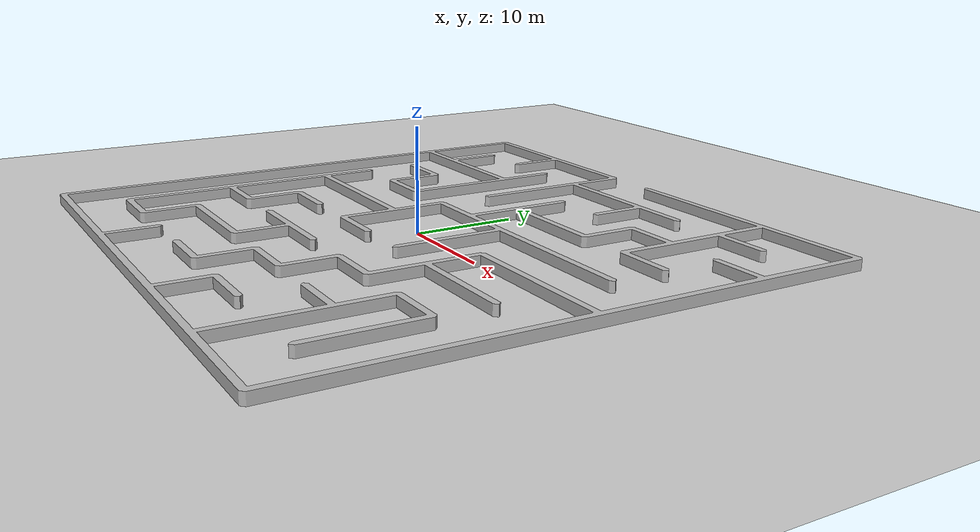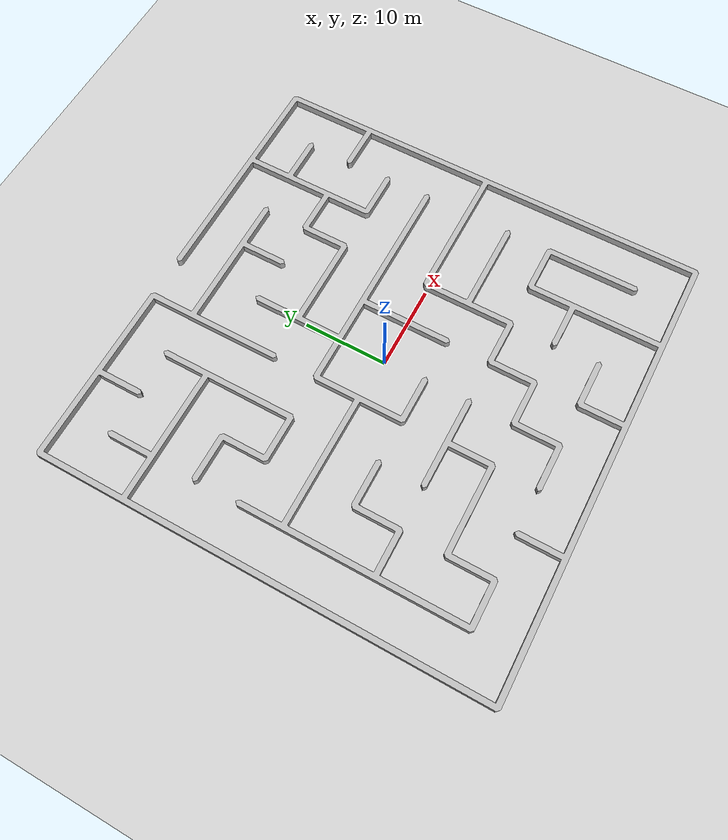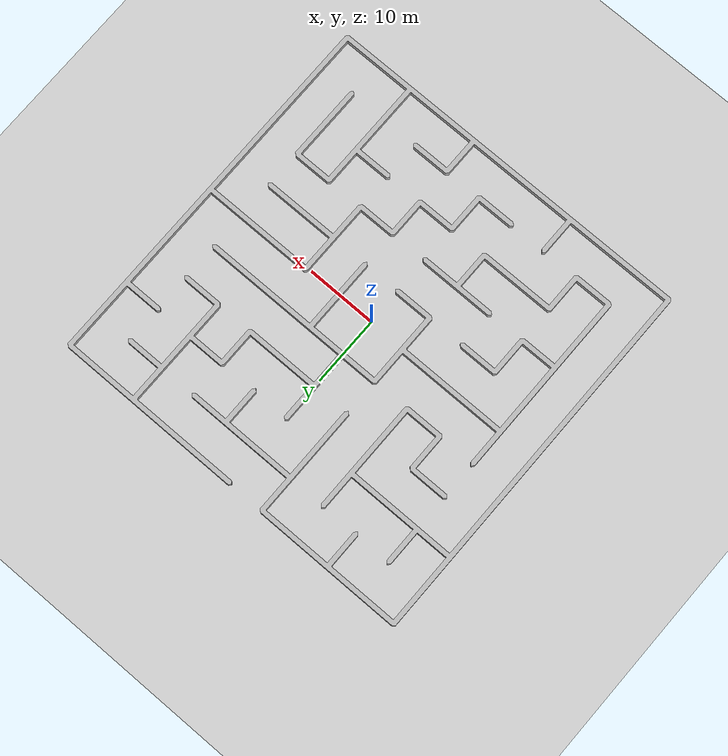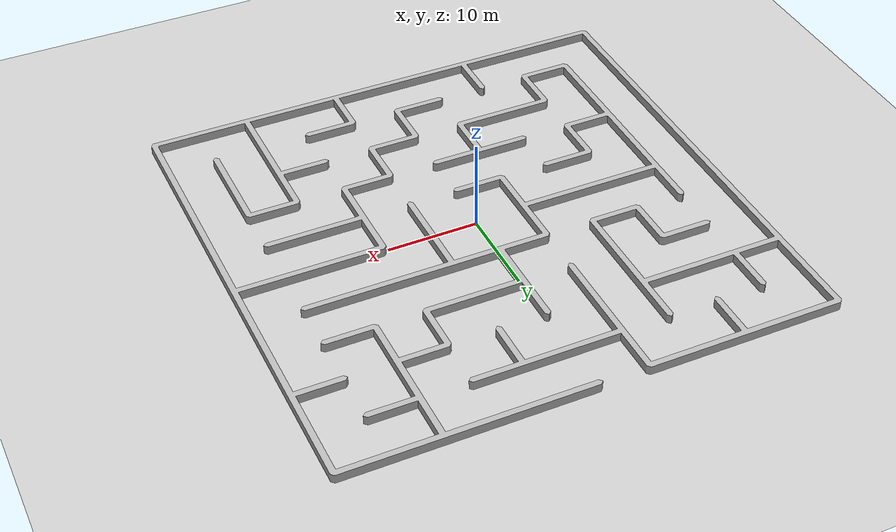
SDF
<?xml version="1.0"?>

<sdf version="1.6">
  <world name="default">
    <plugin name="gazebo_ros_state" filename="libgazebo_ros_state.so">
      <ros>
        <namespace>/demo</namespace>
        <remapping>model_states:=model_states_demo</remapping>
        <remapping>link_states:=link_states_demo</remapping>
      </ros>
      <update_rate>10.0</update_rate>
    </plugin>

    <include>
      <uri>model://ground_plane</uri>
    </include>
    <include>
      <uri>model://sun</uri>
    </include>

​    <include>
​      <uri>model://maze1</uri>
​    </include>

    <gui fullscreen='0'>
      <camera name='user_camera'>
        <pose>-30.7614 1.32089 33.8068 0 0.655644 0.025013</pose>
        <view_controller>orbit</view_controller>
        <projection_type>perspective</projection_type>
      </camera>
    </gui>

  </world>
</sdf>

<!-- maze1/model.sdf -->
<sdf version="1.4">
  <model name="maze1">
    <link name="link">
      <inertial>
        <mass>1</mass>
        <inertia>
          <ixx>0.0</ixx>
          <ixy>0.0</ixy>
          <ixz>0.0</ixz>
          <iyy>0.0</iyy>
          <iyz>0.0</iyz>
          <izz>0.0</izz>
        </inertia>
      </inertial>
      <collision name="collision">
        <pose>-27 27 0 0 0 0</pose>
        <geometry>
          <mesh>
            <uri>model://maze1/map.stl</uri>
          </mesh>
        </geometry>
      </collision>
      <visual name="visual">
        <pose>-27 27 0 0 0 0</pose>
        <geometry>
          <mesh>
            <uri>model://maze1/map.stl</uri>
          </mesh>
        </geometry>
      </visual>
    </link>
    <static>1</static>
  </model>
</sdf>
